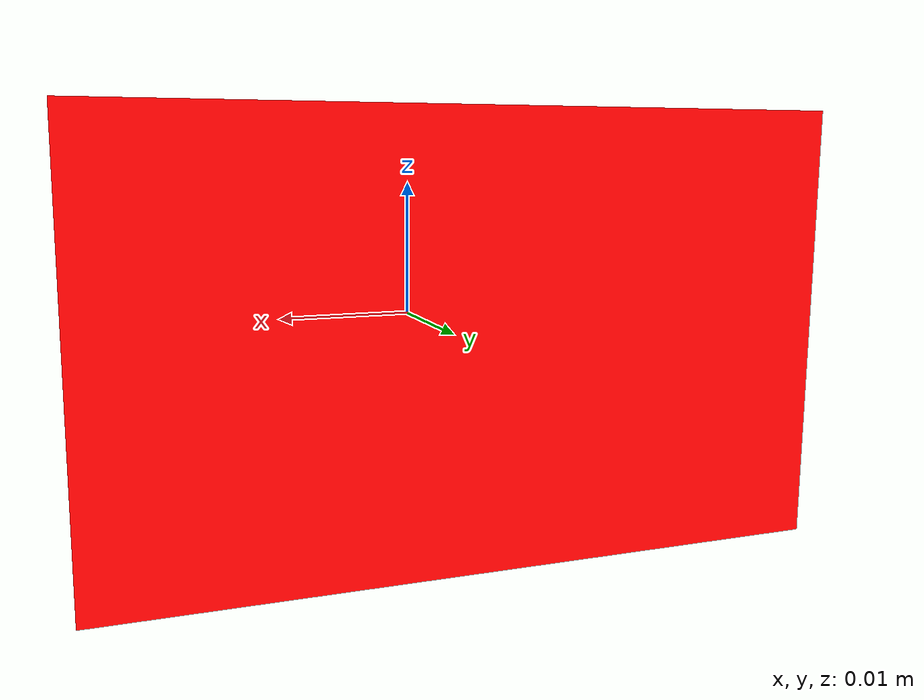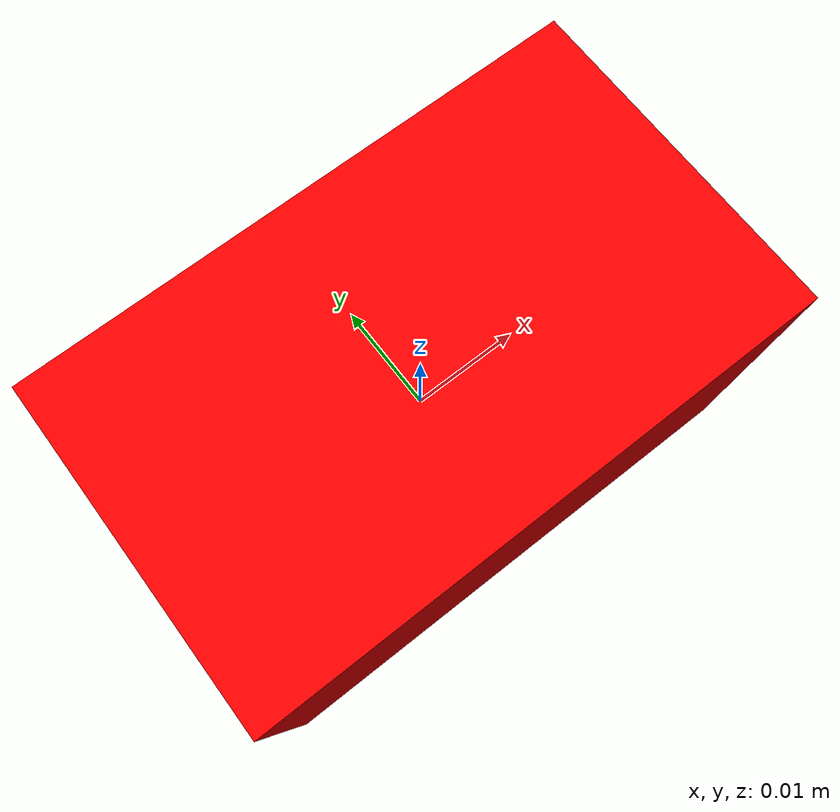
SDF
<?xml version='1.0'?>
<sdf version="1.4">
<model name="cube">
  <pose>0 0 0 0 0 0</pose>
  <static>false</static>
    <link name="link">
      <inertial>
        <mass>1.0</mass>
        <inertia> <!-- inertias are tricky to compute -->
          <!-- http://gazebosim.org/tutorials?tut=inertia&cat=build_robot -->
          <ixx>0.083</ixx>       <!-- for a box: ixx = 0.083 * mass * (y*y + z*z) -->
          <ixy>0.0</ixy>         <!-- for a box: ixy = 0 -->
          <ixz>0.0</ixz>         <!-- for a box: ixz = 0 -->
          <iyy>0.083</iyy>       <!-- for a box: iyy = 0.083 * mass * (x*x + z*z) -->
          <iyz>0.0</iyz>         <!-- for a box: iyz = 0 -->
          <izz>0.083</izz>       <!-- for a box: izz = 0.083 * mass * (x*x + y*y) -->
        </inertia>
      </inertial>
      <collision name="collision">
        <geometry>
          <box>
            <size>0.05 0.03 0.03</size>
          </box>
        </geometry>
      </collision>
      <visual name="visual">
        <geometry>
          <box>
            <size>0.05 0.03 0.03</size>
          </box>
        </geometry>
        <material>
            <ambient>1 0 0 1</ambient>
            <diffuse>1 0 0 1</diffuse>
            <specular>0.1 0.1 0.1 1</specular>
            <emissive>0 0 0 0</emissive>
         </material>
      </visual>
    </link>
  </model>
</sdf>
